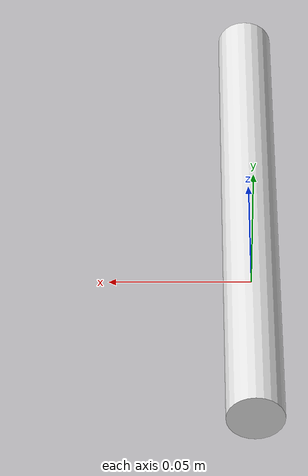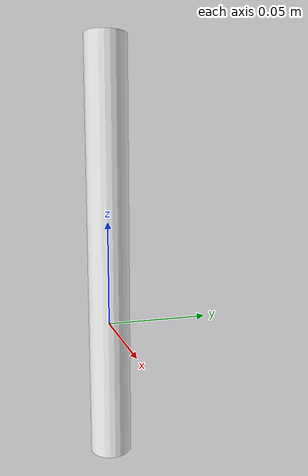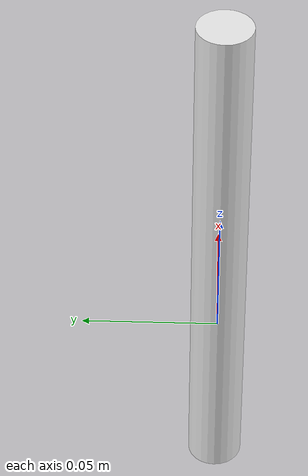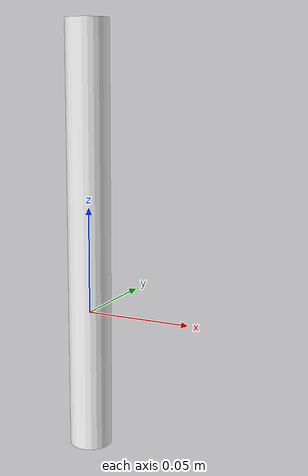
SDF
<?xml version='1.0'?>
<sdf version='1.6'>
  <model name='rod'>
    <link name='link'>
      <pose>0.0 0.0 0.035 0 -0 0</pose>
      <inertial>
        <!-- Adjusted mass and inertia properties -->
        <!-- Mass is set to 0.1 kg for a lightweight rod -->
        <!-- Inertia values are adjusted proportionally based on the dimensions -->
        <mass>0.1 </mass> <!-- Placeholder for mass -->
        <inertia>
          <ixx>2.5e-5</ixx>
          <ixy>0</ixy>
          <ixz>0</ixz>
          <iyy>2.5e-5</iyy>
          <iyz>0</iyz>
          <izz>5e-6</izz>
        </inertia>
        <pose>0 0 0 0 -0 0</pose>
      </inertial>
      <self_collide>0</self_collide>
      <kinematic>0</kinematic>
      <enable_wind>0</enable_wind>
      <pose>0 0 0 0 -0 0</pose>
      <visual name='visual'>
        <!-- Adjusted dimensions of the rod -->
        <geometry>
          <cylinder>
            <radius>0.01</radius> <!-- Placeholder for radius -->
            <length>0.2</length> <!-- Placeholder for length -->
          </cylinder>
        </geometry>
        <material>
          <!-- Use Gazebo's default material or customize as needed -->
          <script>
            <uri>file://media/materials/scripts/gazebo.material</uri>
            <name>Gazebo/White</name>
          </script>
          <shader type='pixel'/>
        </material>
        <pose>0 0 0 0 -0 0</pose>
        <transparency>0</transparency>
        <cast_shadows>1</cast_shadows>
      </visual>
      <collision name='collision'>
        <!-- Adjusted dimensions of the collision geometry -->
        <geometry>
          <cylinder>
            <radius>0.01</radius> <!-- Placeholder for radius -->
            <length>0.2</length> <!-- Placeholder for length -->
          </cylinder>
        </geometry>
        <!-- Define friction, bounce, and contact properties as needed -->
        <surface>
          <friction>
            <ode>
              <mu>0.6</mu>
              <mu2>0.6</mu2>
              <fdir1>0 0 0</fdir1>
              <slip1>0</slip1>
              <slip2>0</slip2>
            </ode>
          </friction>
          <bounce>
            <restitution_coefficient>0</restitution_coefficient>
            <threshold>1e+06</threshold>
          </bounce>
          <contact>
            <!-- Define contact properties as needed -->
            <collide_without_contact>0</collide_without_contact>
            <collide_without_contact_bitmask>1</collide_without_contact_bitmask>
            <collide_bitmask>1</collide_bitmask>
          </contact>
        </surface>
      </collision>
    </link>
    <static>0</static>
    <allow_auto_disable>1</allow_auto_disable>
  </model>
</sdf>
